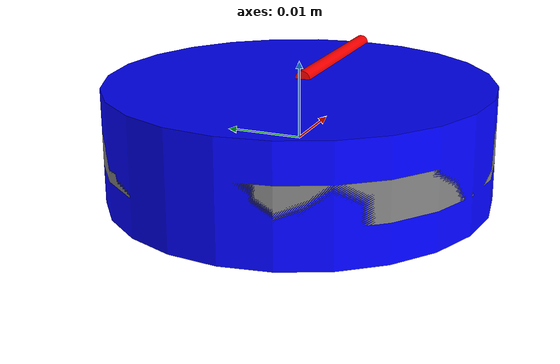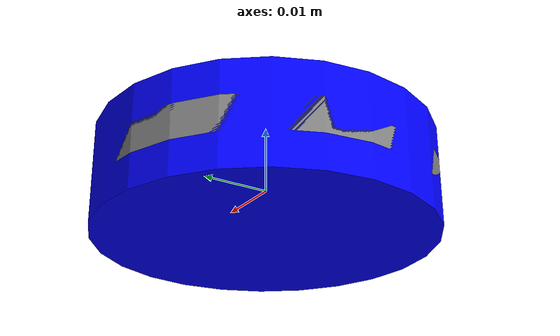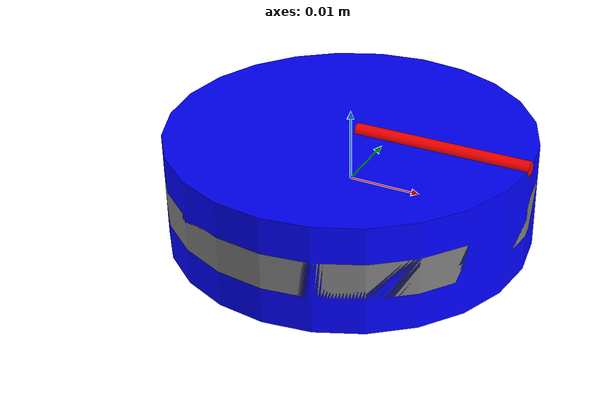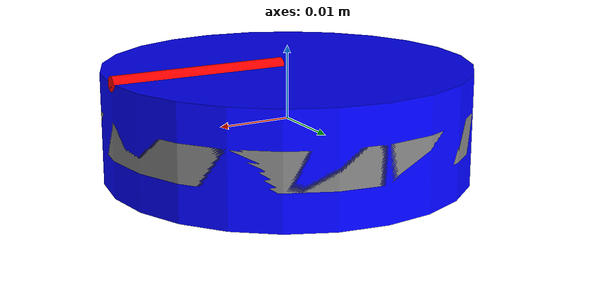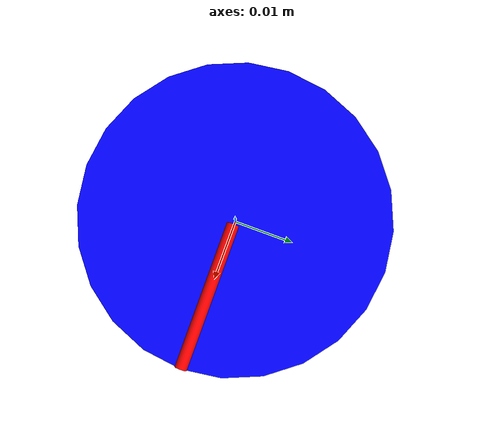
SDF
<?xml version="1.0"?>
<sdf version="1.7">
  <model name="bottle_cap">
    <!-- Axes:
         +X - pointing toward the handle.
         +Z - pointing toward the top.
         Origin:
         (0, 0, 0) at the center of the cap. -->

    <!-- Define the bottle cap link -->
    <link name="cap_link">
      <inertial>
        <pose>0 0 0 0 0 0</pose>
        <mass>0.05</mass> <!-- Reduced mass for a smaller cap -->
        <inertia>
          <ixx>0.0001</ixx>
          <ixy>0.0</ixy>
          <ixz>0.0</ixz>
          <iyy>0.0001</iyy>
          <iyz>0.0</iyz>
          <izz>0.00008</izz>
        </inertia>
      </inertial>
      <visual name="visual_cap">
        <geometry>
          <cylinder>
            <radius>0.025</radius>
            <length>0.015</length> <!-- Reduced height for a bottle cap -->
          </cylinder>
        </geometry>
        <material>
          <diffuse>0.0 0.0 1.0 1.0</diffuse> <!-- Changed color to blue -->
        </material>
      </visual>
      <!-- Add a visual line on the cap -->
      <visual name="visual_cap_line">
        <pose>0.013 0 0.0075 0 1.574 0</pose> <!-- Position the line on the edge -->
        <geometry>
          <cylinder>
            <radius>0.001</radius> <!-- Narrow line -->
            <length>0.024</length> <!-- Same height as the cap -->
          </cylinder>
        </geometry>
        <material>
          <diffuse>1.0 0.0 0.0 1.0</diffuse> <!-- Red color for visibility -->
        </material>
      </visual>
      <collision name="collision_cap">
        <geometry>
          <cylinder>
            <radius>0.024</radius>
            <length>0.015</length> <!-- Same height for collision -->
          </cylinder>
        </geometry>
      </collision>
    </link>

    <!-- Add the base link -->
    <link name="base_link">
      <inertial>
        <pose>0 0 -0.01 0 0 0</pose>
        <mass>0.1</mass>
        <inertia>
          <ixx>0.0002</ixx>
          <ixy>0.0</ixy>
          <ixz>0.0</ixz>
          <iyy>0.0002</iyy>
          <iyz>0.0</iyz>
          <izz>0.00015</izz>
        </inertia>
      </inertial>
      <visual name="visual_base">
        <geometry>
          <cylinder>
            <radius>0.025</radius>
            <length>0.005</length> <!-- Base is thinner -->
          </cylinder>
        </geometry>
        <material>
          <diffuse>0.5 0.5 0.5 0.0</diffuse> <!-- Grey base -->
        </material>
      </visual>
      <collision name="collision_base">
        <geometry>
          <cylinder>
            <radius>0.024</radius>
            <length>0.005</length>
          </cylinder>
        </geometry>
      </collision>
    </link>

    <!-- Add a revolute joint -->
    <joint name="cap_to_base" type="revolute">
      <parent>base_link</parent>
      <child>cap_link</child>
      <axis>
        <xyz>0 0 1</xyz> <!--Rotation around the Z-axis -->
        <limit>
          <lower>-3.14</lower> <!--Full rotation allowed-->
          <upper>3.14</upper>
          <effort>10.0</effort> <!--Maximum torque-->
          <velocity>1.0</velocity> <!--Maximum rotational speed-->
        </limit>
      </axis>
    </joint>
  </model>
</sdf>
